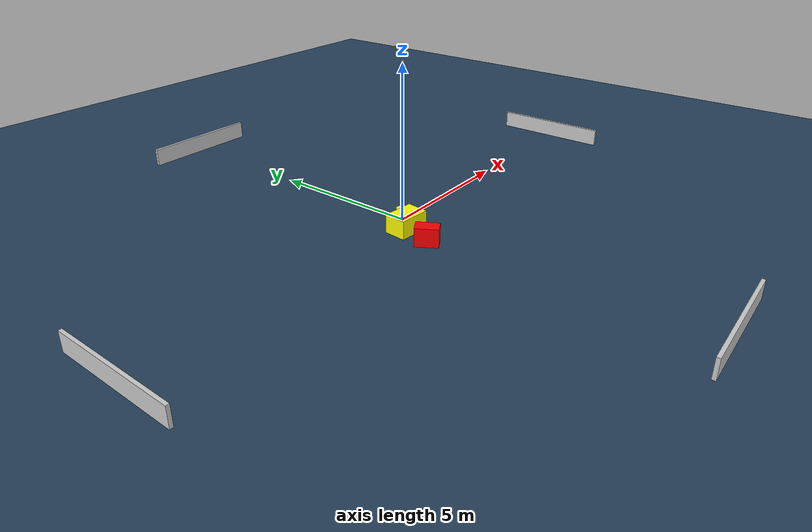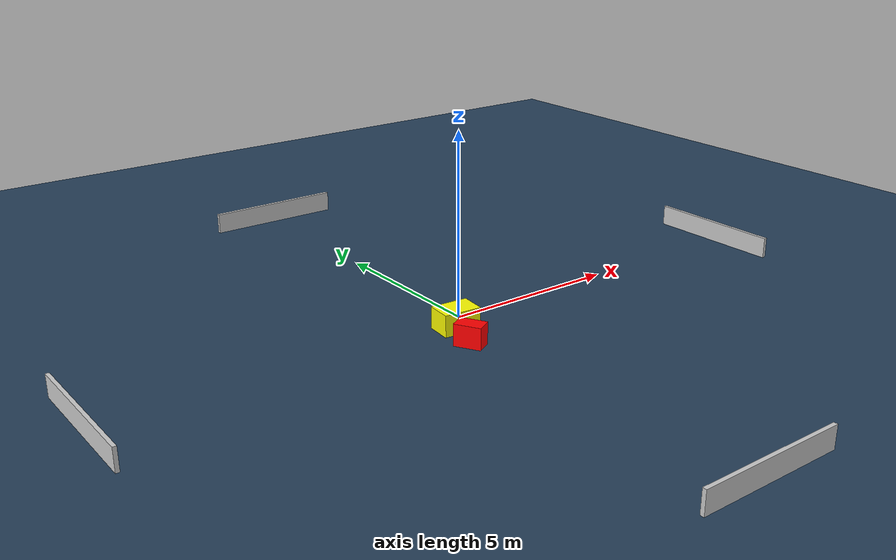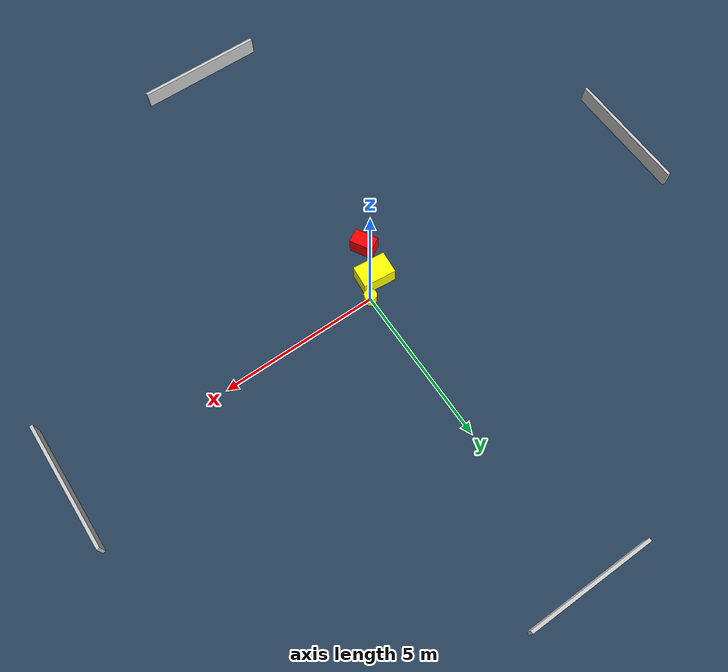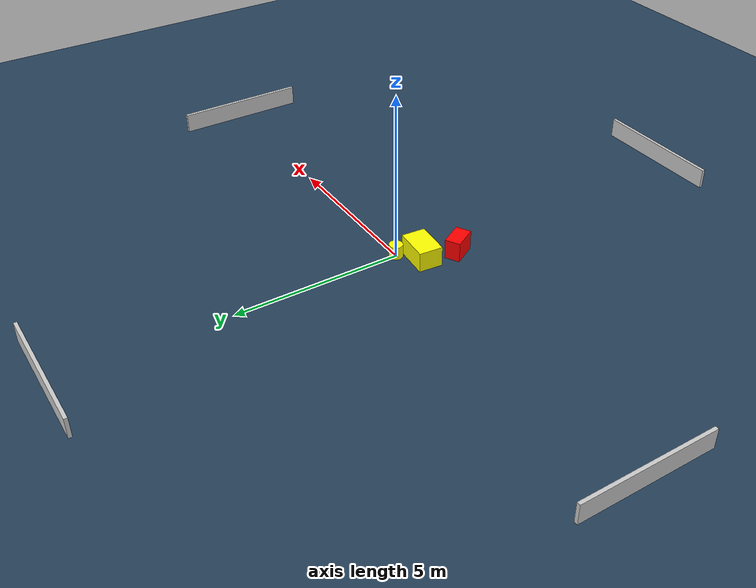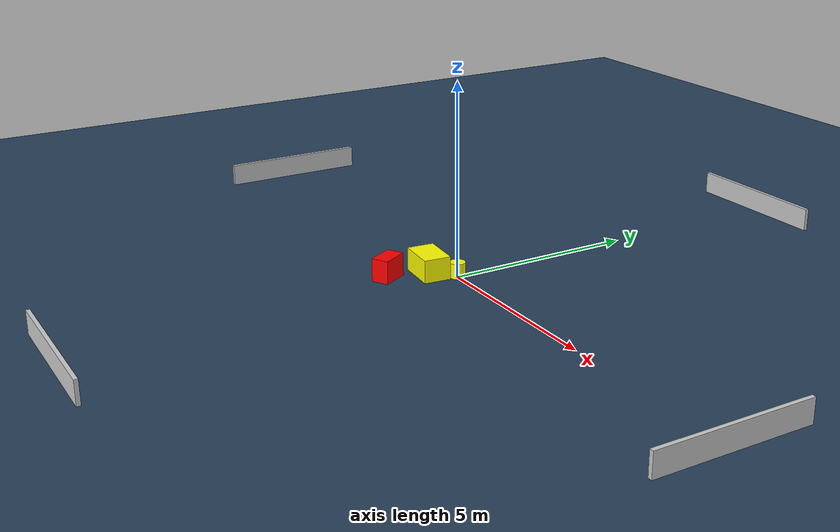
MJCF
<?xml version="1.0" ?>
<mujoco model="generated_environment">
  <option timestep="0.01" integrator="RK4" cone="elliptic"/>
  <default>
    <geom density="1"/>
  </default>
  <asset>
    <texture builtin="gradient" height="3072" name="skybox" rgb1="0.3 0.5 0.7" rgb2="0 0 0" type="skybox" width="512"/>
    <texture builtin="checker" height="300" name="groundplane" rgb1="0.2 0.3 0.4" rgb2="0.1 0.2 0.3" type="2d" width="300"/>
    <material name="groundplane" reflectance="0.2" texrepeat="5 5" texture="groundplane"/>
  </asset>
  <worldbody>
    <light dir="0 0 -1" directional="true" pos="0 0 1.5"/>
    <geom condim="3" friction="0.5 0.005 0.001" material="groundplane" name="floor" pos="0 0 0" size="0 0 0.05" type="plane"/>
    <body name="walls">
      <geom name="wall_1" condim="4" pos="-10.0 0.0 0.3" rgba="0.800000011920929 0.800000011920929 0.800000011920929 1.0" size="0.05 2.0 0.3" type="box"/>
      <geom name="wall_2" condim="4" pos="10.0 0.0 0.3" rgba="0.800000011920929 0.800000011920929 0.800000011920929 1.0" size="0.05 2.0 0.3" type="box"/>
      <geom name="wall_3" condim="4" pos="0.0 -10.0 0.3" rgba="0.800000011920929 0.800000011920929 0.800000011920929 1.0" size="2.0 0.05 0.3" type="box"/>
      <geom name="wall_4" condim="4" pos="0.0 10.0 0.3" rgba="0.800000011920929 0.800000011920929 0.800000011920929 1.0" size="2.0 0.05 0.3" type="box"/>
    </body>
    <body name="robot">
      <joint name="joint_x" type="slide" pos="0 0 0" axis="1 0 0"/>
      <joint name="joint_y" type="slide" pos="0 0 0" axis="0 1 0"/>
      <geom name="robot" type="cylinder" pos="0.0 0.0 0.2" size="0.2 0.2 0.0" mass="5.0" friction="1.0 0.005 0.0001" condim="4" rgba="1.0 1.0 0.0 1.0"/>
    </body>
    <body name="obstacle_1_movable">
      <geom name="obstacle_1_movable" condim="4" pos="-0.5091293370072835 -0.5356357403938103 0.3" euler="0 0 354.91234228283645" friction="0.0 0.005 0.001" rgba="1.0 1.0 0.0 1.0" size="0.5217804778871737 0.35434812298926854 0.3" type="box" mass="0.1"/>
      <joint type="free"/>
    </body>
    <body name="obstacle_2_static">
      <geom name="obstacle_2_static" condim="4" pos="-0.8211029280315677 -1.540754381715464 0.3" euler="0 0 209.7325948296482" friction="0.0 0.005 0.001" rgba="1.0 0.0 0.0 1.0" size="0.22704629325782083 0.3688361726037726 0.3" type="box"/>
    </body>
  </worldbody>
  <actuator>
    <motor name="actuator_x" joint="joint_x" gear="1" ctrlrange="-1 1"/>
    <motor name="actuator_y" joint="joint_y" gear="1" ctrlrange="-1 1"/>
  </actuator>
</mujoco>
